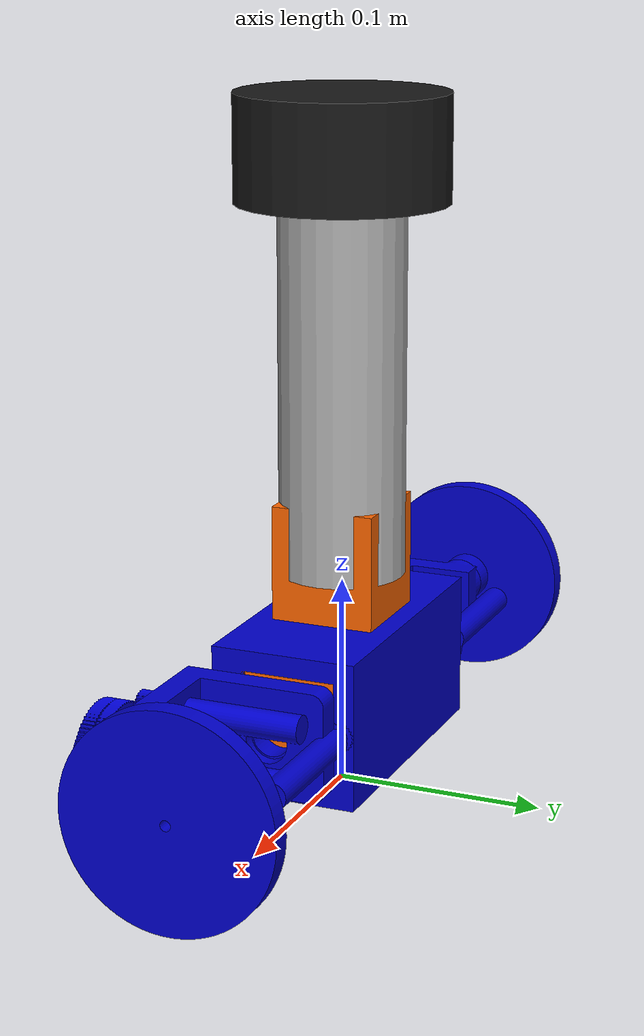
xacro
<?xml version="1.0"?>
<robot name="mrs" xmlns:xacro="http://www.ros.org/wiki/xacro">

    <!-- Constants for robot -->
    <xacro:include filename="$(find mrs_description)/urdf/common_mrs.xacro" />
    <!-- Import all Gazebo-customization elements, including Gazebo colors -->
    <xacro:include filename="$(find mrs_description)/urdf/power_base/ball_bearing.urdf.xacro" />
    <xacro:include filename="$(find mrs_description)/urdf/power_base/sm_other.urdf.xacro" />
    <xacro:include filename="$(find mrs_description)/urdf/JM/jm.xacro" />
    <xacro:include filename="$(find mrs_description)/urdf/PCM/pcm.xacro" />

    <!-- Used for fixing robot to Gazebo 'base_link' -->
    <link name="world" >
        <inertial>
        <mass value="0.1"/>
        <origin xyz="0 0 0" rpy="0 0 0"/>
        <inertia ixx="1.0" ixy="0.0" ixz="0.0" iyy="1.0" iyz="0.0" izz="1.0"/>
      </inertial>
      <visual>
        <origin xyz="0 0 0" rpy="0 0 0"/>
        <geometry>
          <box size="0.001 0.001 0.001"/>
        </geometry>
        <material name="Red"/>
      </visual>
      <collision>
        <origin xyz="0 0 0" rpy="0 0 0"/>
        <geometry>
          <box size="0.001 0.001 0.001"/>
        </geometry>
      </collision>
    </link>
    <joint name="fixed" type="fixed">
        <axis xyz="1 0 0 " />
        <origin xyz="0 0 0.05" rpy="0 ${-pi/2} 0" />
        <parent link="world" />
        <child link="base_footprint" />
    </joint>

    <!-- Fictitious Base Link is a fictitious link(frame) that is on the ground below
        base_link origin, Dummy link-->

    <link name="base_footprint">
            <mass value="1.0" />
            <visual>
                <geometry>
                    <box size="0.07 0.07 0.14" />
                </geometry>
                <material name="Blue">
                </material>
            </visual>
            <collision>
                <geometry>
                    <box size="0.05 0.05 0.04" />
                </geometry>
            </collision>
            <xacro:default_inertial mass="0.15" I_tensor="8.166e-4"/>
    </link>
        <gazebo reference="base_footprint">
        <material>Gazebo/Blue</material>
        <selfCollide>false</selfCollide>
    </gazebo>

  <xacro:PcModule_Prismatic parent="world" prefix="W3" reflect="3" />
  <xacro:JM3_solid name="JM" prefix="W1" instance="1"  parent="W1_PCmodule" reflect="1" shift="0.035"/>
  <xacro:PcModule_solid parent="base_footprint" prefix="W1" reflect="-1" />
  <xacro:PcModule_solid parent="base_footprint" prefix="W2" reflect="1" />
  <xacro:JM3_solid name="JM1" prefix="W1" instance="2"  parent="W2_PCmodule" reflect="-1" shift="0.035"/>

  <xacro:SMRadprobe parent="W3_PCmodule" prefix="W4" reflect="0" instance="1" />
    <!-- ros_control plugin -->
    <gazebo>
        <plugin name="mrs_ros_control" filename="libgazebo_ros_control.so">
            <controlPeriod>0.001</controlPeriod>
            <robotNamespace>/mrs</robotNamespace>
        </plugin>

      <plugin name="object_controller" filename="libgazebo_ros_planar_move.so">
      <commandTopic>cmd_vel</commandTopic>
      <odometryTopic>odom</odometryTopic>
      <odometryFrame>odom</odometryFrame>
      <odometryRate>20.0</odometryRate>
      <robotBaseFrame>world</robotBaseFrame>
    </plugin>
  </gazebo>

</robot>

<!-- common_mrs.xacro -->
<robot name="mrs" xmlns:xacro="http://www.ros.org/wiki/xacro">

	<!-- Auxiliar Values -->
	<property name="pi" value="3.1415926535897931" />
	<property name="max_effort" value="20" />
	<property name="max_velocity" value="10" />

	<!-- Links Mass -->
	<property name="j1_mass" value="0.137" />
	<property name="j2_mass" value="0.01" />
	<property name="j3_mass" value="0.027" />
	<property name="w1_mass" value="0.089" />
	<property name="pc_mass" value="0.249" />

	<!-- Links COG -->
	<property name="j1_cog" value="-0.024 -0.021 0" />
	<property name="j2_cog" value="1.068e-4 0 4.22e-4" />
	<property name="j3_cog" value="-5.121e-4 0.014 -0.012" />
	<property name="w1_cog" value="-0.003 0 0" />
	<property name="pc_cog" value="-0.034 0 0" />

	<!-- Links Inertia -->
	<macro name="j1_inertia">
		<inertia ixx="1.043e-4" ixy="4.237e-5" ixz="8.843e-7"
		iyy="1.259e-5" iyz="-2.329e-8" izz="1.759e-4" />
	</macro>
	<macro name="j2_inertia">
		<inertia 	ixx="1.34e-6" 	ixy="2.119e-11"		ixz="7.365e-11"
							iyy="1.326e-6"	iyz="2.329e-12"
							izz="2.006e-6" />
	</macro>
	<macro name="j3_inertia">
		<inertia 	ixx="9.335e-6" ixy="1.198e-8" ixz="5.264e-9"
							iyy="5.505e-6" iyz="-2.699e-6"
							izz="6.39e-6" />
	</macro>
	<macro name="pc_inertia">
		<inertia 	ixx="4.35e-4" ixy="-5.575e-21" ixz="4.256e-21"
							iyy="4.82e-4" iyz="3.176e-21"
							izz="1.809e-4" />
	</macro>
	<macro name="w1_inertia">
		<inertia 	ixx="1.036e-4" ixy="0" ixz="0"
							iyy="5.359e-5" iyz="0"
							izz="5.359e-5" />
	</macro>
		<!-- Links orientation and origin -->
	<macro name="j1_ori">
      <origin xyz="0 0 0" rpy="${-pi/2} 0 0"/>
	</macro>
	<macro name="j2_ori">
		<origin xyz="0.044 0 0" rpy="0 0 0" />
	</macro>
	<macro name="j3_ori">
      <origin xyz="-0.5 0 0" rpy="0 0 ${-pi/2} "/>
	</macro>
	<macro name="pc_ori">
      <origin xyz="0.5 0 0" rpy="0 0 0"/>
	</macro>
	<macro name="w1_ori">
      <origin xyz="0 0 0" rpy="0 0 0 "/>
	</macro>

	<!-- MESH FILES -->
	<property name="j1_mesh" value="package://mrs_description/meshes/J1.dae" />
		<!--property name="j1_mesh" value="package://mrs_description/meshes/BASE.dae" /-->
	<property name="j2_mesh" value="package://mrs_description/meshes/J2.dae" />
	<property name="j3_mesh" value="package://mrs_description/meshes/J3.dae" />
	<property name="pc_mesh" value="package://mrs_description/meshes/Pc.dae" />
	<property name="w1_mesh" value="package://mrs_description/meshes/WR1.dae" />

	<!-- Link's Macro -->
	<macro name="create_link" params="name color mesh mass cog *inertia instance prefix">
		<link name="${instance}_${prefix}_${name}">
			<visual>
				<!--xacro:insert_block name="ori" /-->
				<geometry>
					<mesh filename="${mesh}" />
				</geometry>
				<material name="${color}" />
			</visual>
			<collision>
				<!--xacro:insert_block name="ori" /-->
				<geometry>
					<mesh filename="${mesh}" />
				</geometry>
			</collision>
			<inertial>
				<origin xyz="${cog}" rpy="0 0 0" />
				<mass value="${mass}" />
				<xacro:insert_block name="inertia" />
			</inertial>
		</link>
	</macro>

	<macro name="create_link_no_collision" params="name color mesh mass cog *inertia instance prefix">
		<link name="${instance}_${prefix}_${name}">
			<visual>
				<!--xacro:insert_block name="ori" /-->
				<geometry>
					<mesh filename="${mesh}" />
				</geometry>
				<material name="${color}" />
			</visual>
			<inertial>
				<origin xyz="${cog}" rpy="0 0 0" />
				<mass value="${mass}" />
				<xacro:insert_block name="inertia" />
			</inertial>
		</link>
	</macro>
	<!-- Transmission's Macro -->
	<macro name="simple_transmission" params="joint">
		<transmission name="${joint}tran">
			<type>transmission_interface/SimpleTransmission</type>
			<joint name="${joint}" />
			<actuator name="${joint}_motor">
				<hardwareInterface>EffortJointInterface</hardwareInterface>
				<mechanicalReduction>1</mechanicalReduction>
			</actuator>
		</transmission>
	</macro>

	<!-- Joints Dynamics -->
	<property name="j1_damping" value="0" />
	<property name="j2_damping" value="0" />
	<property name="j3_damping" value="0" />
	<property name="w1_damping" value="0" />

</robot>

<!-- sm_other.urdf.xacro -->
<robot xmlns:xacro="http://www.ros.org/wiki/xacro">

        <!-- Constants for robot -->
    <xacro:include filename="$(find mrs_description)/urdf/common_mrs.xacro" />
  <!-- simplified box collision geometry for base -->

  <property name="mass" value="22.0"/>

   <!-- Size of square 'camera' box -->
  <xacro:property name="camera_size" value="0.015" />

    <xacro:macro name="Camera" params="parent prefix x y z instance">
    <joint name="${instance}_${prefix}_camera_joint" type="fixed">
      <axis xyz="1 0 0" />
      <parent link="${parent}" />
      <child link="${instance}_${prefix}_camera_link" />
      <origin rpy="0 0 0" xyz="${x} ${y} ${z}" />
    </joint>
    <link name="${instance}_${prefix}_camera_link">
      <visual>
        <geometry>
            <box size="${camera_size} ${camera_size} ${camera_size}"/>
        </geometry>
        <origin rpy="0 0 0 " xyz="0 0 0" />
        <material name="Red"/>
      </visual>
      <collision>
        <origin rpy="0 0 0 " xyz="0 0 0" />
        <geometry>
            <box size="${camera_size} ${camera_size} ${camera_size}"/>
        </geometry>
      </collision>
      <inertial>
        <mass value="1e-5" />
        <origin xyz="0 0 0" rpy="0 0 0"/>
        <inertia ixx="1e-6" ixy="0" ixz="0" iyy="1e-6" iyz="0" izz="1e-6" />
      </inertial>
    </link>
    <gazebo reference="${instance}_${prefix}_camera_link">
      <mu1>0.2</mu1>
      <mu2>0.2</mu2>
      <material>Gazebo/Red</material>

      <sensor type="camera" name="${instance}_${prefix}_camera">
        <always_on>true</always_on>
        <update_rate>30.0</update_rate>
        <camera name="${instance}_${prefix}_camera">
          <horizontal_fov>1.3962634</horizontal_fov>
          <image>
            <width>800</width>
            <height>800</height>
            <format>R8G8B8</format>
          </image>
          <clip>
            <near>0.02</near>
            <far>300</far>
          </clip>
        </camera>
        <plugin name="camera_controller" filename="libgazebo_ros_camera.so">
          <cameraName>mrs/${instance}_${prefix}_camera</cameraName>
          <imageTopicName>image_raw</imageTopicName>
          <cameraInfoTopicName>camera_info</cameraInfoTopicName>
          <frameName>camera_link</frameName>
          <hackBaseline>0.07</hackBaseline>
          <distortionK1>0.0</distortionK1>
          <distortionK2>0.0</distortionK2>
          <distortionK3>0.0</distortionK3>
          <distortionT1>0.0</distortionT1>
          <distortionT2>0.0</distortionT2>
        </plugin>
      </sensor>
    </gazebo>

    </xacro:macro>

  <xacro:macro name="IMU" params="parent prefix x y z">
    <joint name="${prefix}_imu_joint" type="fixed">
      <axis xyz="1 0 0" />
      <parent link="${parent}" />
      <child link="${prefix}_imu_link" />
      <origin rpy="0 0 0" xyz="${x} ${y} ${z}" />
    </joint>
    <link name="${prefix}_imu_link">
      <visual>
        <geometry>
            <box size="0.001 0.001 0.001"/>
        </geometry>
        <origin rpy="0 0 0 " xyz="0 0 0" />
        <material name="Red"/>
      </visual>
      <collision>
        <origin rpy="0 0 0 " xyz="0 0 0" />
        <geometry>
            <box size="0.001 0.001 0.001"/>
        </geometry>
      </collision>
      <inertial>
        <mass value="1e-5" />
        <origin xyz="0 0 0" rpy="0 0 0"/>
        <inertia ixx="1e-6" ixy="0" ixz="0" iyy="1e-6" iyz="0" izz="1e-6" />
      </inertial>
    </link>
    <gazebo>
      <plugin filename="libgazebo_ros_imu.so" name="imu_en_ros">
        <bodyName>${prefix}_imu_link</bodyName>
        <robotNamespace>mrs</robotNamespace>
        <topicName>${prefix}_IMU</topicName>
      </plugin>
    </gazebo>

  </xacro:macro>

    <xacro:macro name="Laser" params="parent prefix x y z instance">
    <joint name="${instance}_${prefix}_laser_joint" type="fixed">
      <axis xyz="1 0 0" />
      <parent link="${parent}" />
      <child link="${instance}_${prefix}_laser_link" />
      <origin rpy="0 0 0" xyz="${x} ${y} ${z}" />
    </joint>
    <link name="${instance}_${prefix}_laser_link">
      <visual>
        <geometry>
            <box size="${camera_size} ${camera_size} ${camera_size}"/>
        </geometry>
        <origin rpy="0 0 0 " xyz="0 0 0" />
        <material name="Red"/>
      </visual>
      <collision>
        <origin rpy="0 0 0 " xyz="0 0 0" />
        <geometry>
            <mesh filename="package://mrs_description/meshes/hokuyo.dae"/>
        </geometry>
      </collision>
      <inertial>
        <mass value="1e-5" />
        <origin xyz="0 0 0" rpy="0 0 0"/>
        <inertia ixx="1e-6" ixy="0" ixz="0" iyy="1e-6" iyz="0" izz="1e-6" />
      </inertial>
    </link>
    <gazebo reference="${instance}_${prefix}_laser_link">
      <sensor type="gpu_ray" name="${instance}_${prefix}_lasersensor">
        <pose>0 0 0 0 0 0</pose>
        <visualize>false</visualize>
        <update_rate>40</update_rate>
        <ray>
          <scan>
            <horizontal>
              <samples>720</samples>
              <resolution>1</resolution>
              <min_angle>-1.570796</min_angle>
              <max_angle>1.570796</max_angle>
            </horizontal>
          </scan>
          <range>
            <min>0.10</min>
            <max>30.0</max>
            <resolution>0.01</resolution>
          </range>
        </ray>
        <plugin name="gazebo_ros_head_hokuyo_controller" filename="libgazebo_ros_gpu_laser.so">
          <topicName>/mrs/${instance}_${prefix}_lasersensor</topicName>
          <frameName>${instance}_${prefix}_laser_link</frameName>
        </plugin>
      </sensor>
    </gazebo>
    </xacro:macro>

    <xacro:macro name="SMRadprobe" params="parent prefix reflect instance">
        <joint name="${instance}_${prefix}_SMRadprobe_joint" type="fixed">
            <parent link="${parent}" />
            <child link="${instance}_${prefix}_rad_pole" />
            <origin rpy="0 ${-pi/2} 0" xyz="-0.1 0 0" />
        </joint>
        <link name="${instance}_${prefix}_rad_pole">
            <visual>
                <geometry>
                    <cylinder length="0.2" radius=".03" />
                </geometry>
                <origin rpy="0 0 0 " xyz="0 0 0" />
                <material name="Gray">
                    <color rgba=".7 .7 .7 1" />
                </material>
            </visual>
        </link>
        <joint name="${instance}_${prefix}_rad_joint" type="fixed">
            <axis xyz="0 0 1" />
            <origin rpy="0 0 0" xyz="0 0 0.1" />
            <parent link="${instance}_${prefix}_rad_pole" />
            <child link="${instance}_${prefix}_rad" />
        </joint>
        <link name="${instance}_${prefix}_rad">
            <visual>
                <origin rpy="0.0 0 0" xyz="0 0 0" />
                <geometry>
                    <cylinder length="0.05" radius=".05" />
                </geometry>
                                <material name="Black"/>
            </visual>
        </link>
    <gazebo reference="${instance}_${prefix}_rad_pole">
      <material>Gazebo/Red</material>
      <selfCollide>false</selfCollide>
    </gazebo>
    <gazebo reference="${instance}_${prefix}_rad">
      <material>Gazebo/Black</material>
      <selfCollide>false</selfCollide>
    </gazebo>
    </xacro:macro>

    <xacro:macro name="SMHand" params="parent prefix reflect instance">
        <joint name="${instance}_${prefix}_SMHand_joint" type="fixed">
            <parent link="${parent}" />
            <child link="${instance}_${prefix}_gripper_pole" />
            <origin rpy="0 0 0" xyz="0 0 0.05" />
        </joint>
        <link name="${instance}_${prefix}_gripper_pole">
            <visual>
                <origin rpy="0 0 0" xyz="0 0 0" />
                <geometry>
                    <cylinder length="0.1" radius=".02" />
                </geometry>
                <material name="Gray">
                    <color rgba=".7 .7 .7 1" />
                </material>
            </visual>
        </link>
        <joint name="${instance}_${prefix}_left_gripper_joint" type="revolute">
            <axis xyz="0 0 1" />
            <limit effort="1000.0" lower="0.0" upper="0.548" velocity="0.5" />
            <origin rpy="0 0 0" xyz="0 0.005 0.07" />
            <parent link="${instance}_${prefix}_gripper_pole" />
            <child link="${instance}_${prefix}_left_gripper" />
        </joint>
        <link name="${instance}_${prefix}_left_gripper">
            <visual>
                <origin rpy="0.0 0 0" xyz="0 0 0" />
                <geometry>
                    <mesh filename="package://pr2_description/meshes/gripper_v0/l_finger.dae" scale="0.5 0.5 0.5" />
                </geometry>
            </visual>
        </link>
        <joint name="${instance}_${prefix}_left_tip_joint" type="fixed">
            <parent link="${instance}_${prefix}_left_gripper" />
            <child link="${instance}_${prefix}_left_tip" />
        </joint>
        <link name="${instance}_${prefix}_left_tip">
            <visual>
                <origin rpy="0.0 0 0" xyz="0.045 0.00249 0" />
                <geometry>
                    <mesh
                        filename="package://pr2_description/meshes/gripper_v0/l_finger_tip.dae" scale="0.5 0.5 0.5"/>
                </geometry>
            </visual>
        </link>
        <joint name="${instance}_${prefix}_right_gripper_joint" type="revolute">
            <axis xyz="0 0 -1" />
            <limit effort="1000.0" lower="0.0" upper="0.548" velocity="0.5" />
            <origin rpy="0 0 0" xyz="0 -0.005 0.07" />
            <parent link="${instance}_${prefix}_gripper_pole" />
            <child link="${instance}_${prefix}_right_gripper" />
        </joint>
        <link name="${instance}_${prefix}_right_gripper">
            <visual>
                <origin rpy="-3.1415 0 0" xyz="0 0 0" />
                <geometry>
                    <mesh filename="package://pr2_description/meshes/gripper_v0/l_finger.dae" scale="0.5 0.5 0.5" />
                </geometry>
            </visual>
        </link>
        <joint name="${instance}_${prefix}_right_tip_joint" type="fixed">
            <parent link="${instance}_${prefix}_right_gripper" />
            <child link="${instance}_${prefix}_right_tip" />
        </joint>
        <link name="${instance}_${prefix}_right_tip">
            <visual>
                <origin rpy="-3.1415 0 0" xyz="0.045 0.00249 0" />
                <geometry>
                    <mesh
                        filename="package://pr2_description/meshes/gripper_v0/l_finger_tip.dae" scale="0.5 0.5 0.5" />
                </geometry>
            </visual>
        </link>
    <gazebo reference="${instance}_${prefix}_gripper_pole">
      <material>Gazebo/Grey</material>
      <selfCollide>false</selfCollide>
    </gazebo>
    <gazebo reference="${instance}_${prefix}_left_gripper">
      <material>Gazebo/Grey</material>
      <selfCollide>false</selfCollide>
    </gazebo>
    <gazebo reference="${instance}_${prefix}_left_tip">
      <material>Gazebo/Grey</material>
      <selfCollide>false</selfCollide>
    </gazebo>
    <gazebo reference="${instance}_${prefix}_right_gripper">
      <material>Gazebo/Grey</material>
      <selfCollide>false</selfCollide>
    </gazebo>
    </xacro:macro>

</robot>

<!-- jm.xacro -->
<robot name="mrs" xmlns:xacro="http://www.ros.org/wiki/xacro">

  <!-- Constants for robot -->
  <xacro:include filename="$(find mrs_description)/urdf/common_mrs.xacro" />
  <!-- Import all Gazebo-customization elements, including Gazebo colors -->
  <xacro:include filename="$(find mrs_description)/urdf/JM/jm.gazebo.xacro" />
  <!-- Import Rviz colors -->

  <xacro:include filename="$(find mrs_description)/urdf/materials.urdf.xacro" />

<macro name="JM1_armconnect" params="name prefix instance parent">
  <!-- Links -->
  <create_link name="j1_link" color="Blue" mesh="${j1_mesh}"
    cog="${j1_cog}" mass="${j1_mass}" instance="${instance}" prefix="${prefix}">
    <j1_inertia />
  </create_link>

  <create_link_no_collision name="j2_link" color="Blue" mesh="${j2_mesh}"
    cog="${j2_cog}" mass="${j2_mass}" instance="${instance}" prefix="${prefix}">
    <j2_inertia />
  </create_link_no_collision>
  <create_link_no_collision name="j3_link" color="Blue" mesh="${j3_mesh}"
    cog="${j3_cog}" mass="${j3_mass}" instance="${instance}" prefix="${prefix}">
    <j3_inertia />
  </create_link_no_collision>
  <create_link name="w1_link" color="Blue" mesh="${w1_mesh}"
    cog="${w1_cog}" mass="${w1_mass}" instance="${instance}" prefix="${prefix}">
    <w1_inertia />
  </create_link>

  <!-- Joints -->

  <joint name="${instance}_${prefix}_j3" type="continuous">
    <child link="${instance}_${prefix}_w1_link" />
    <parent link="${parent}" />
    <axis xyz="0 0 1 " />
    <origin xyz="0 0 0.01" rpy="${-pi/2} 0 0" />
    <limit lower="${-pi/2}" upper="${pi/2}" effort="${max_effort}"
      velocity="${max_velocity}" />
    <dynamics damping="${j3_damping}" />
 </joint>
  <joint name="${instance}_${prefix}_j2_fixed" type="fixed">
    <child link="${instance}_${prefix}_j3_link" />
    <parent link="${instance}_${prefix}_w1_link" />
    <origin xyz="0.045 0 0" rpy="0 0 ${pi/2}" />
  </joint>

  <joint name="${instance}_${prefix}_j2" type="revolute">
    <child link="${instance}_${prefix}_j1_link" />
    <parent link="${instance}_${prefix}_j3_link" />
    <axis xyz="1 0 0 " />
    <origin xyz="0 0 0" rpy="0 ${-pi/2} 0" />
    <limit lower="${-pi/2}" upper="${pi/2}" effort="${max_effort}"
      velocity="${max_velocity}" />
    <dynamics damping="${j2_damping}" />
  </joint>

  <joint name="${instance}_${prefix}_j1" type="continuous">
    <child link="${instance}_${prefix}_j2_link" />
    <parent link="${instance}_${prefix}_j1_link" />
    <axis xyz="0 0 1 " />
    <origin xyz="0 -0.058 0" rpy="${pi/2} 0 0" />
    <limit lower="${-pi/2}" upper="${pi/2}" effort="${max_effort}"
      velocity="${max_velocity}" />
    <dynamics damping="${j3_damping}" />
  </joint>

    <!-- Transmissions -->
  <simple_transmission joint="${instance}_${prefix}_j1" />
  <simple_transmission joint="${instance}_${prefix}_j2" />
  <simple_transmission joint="${instance}_${prefix}_j3" />

    <!-- Gazebo  -->
  <xacro:JMG name="${name}_gazebo" prefix="${prefix}" instance="${instance}" />

  </macro>

<macro name="JM1" params="name prefix instance parent">
  <!-- Links -->
  <create_link name="j1_link" color="Blue" mesh="${j1_mesh}"
    cog="${j1_cog}" mass="${j1_mass}" instance="${instance}" prefix="${prefix}">
    <j1_inertia />
  </create_link>

  <create_link_no_collision name="j2_link" color="Blue" mesh="${j2_mesh}"
    cog="${j2_cog}" mass="${j2_mass}" instance="${instance}" prefix="${prefix}">
    <j2_inertia />
  </create_link_no_collision>
  <create_link_no_collision name="j3_link" color="Blue" mesh="${j3_mesh}"
    cog="${j3_cog}" mass="${j3_mass}" instance="${instance}" prefix="${prefix}">
    <j3_inertia />
  </create_link_no_collision>
  <create_link name="w1_link" color="Blue" mesh="${w1_mesh}"
    cog="${w1_cog}" mass="${w1_mass}" instance="${instance}" prefix="${prefix}">
    <w1_inertia />
  </create_link>

  <!-- Joints -->

    <joint name="${instance}_${prefix}_j3" type="fixed">
    <child link="${instance}_${prefix}_w1_link" />
    <parent link="${parent}" />
    <axis xyz="0 0 1 " />
    <origin xyz="0 0 0.01" rpy="0 ${-pi/2} 0" />
  </joint>

  <joint name="${instance}_${prefix}_j2_fixed" type="fixed">
    <child link="${instance}_${prefix}_j3_link" />
    <parent link="${instance}_${prefix}_w1_link" />
    <origin xyz="0.045 0 0" rpy="0 0 ${pi/2}" />
  </joint>

  <joint name="${instance}_${prefix}_j2" type="revolute">
    <child link="${instance}_${prefix}_j1_link" />
    <parent link="${instance}_${prefix}_j3_link" />
    <axis xyz="1 0 0 " />
    <origin xyz="0 0 0" rpy="0 ${-pi/2} 0" />
    <limit lower="${-pi/2}" upper="${pi/2}" effort="${max_effort}"
      velocity="${max_velocity}" />
    <dynamics damping="${j2_damping}" />
  </joint>

  <joint name="${instance}_${prefix}_j1" type="revolute">
    <child link="${instance}_${prefix}_j2_link" />
    <parent link="${instance}_${prefix}_j1_link" />
    <axis xyz="0 0 1 " />
    <origin xyz="0 -0.058 0" rpy="${pi/2} 0 0" />
    <limit lower="${-pi/2}" upper="${pi/2}" effort="${max_effort}"
      velocity="${max_velocity}" />
    <dynamics damping="${j3_damping}" />
  </joint>

    <!-- Transmissions -->
  <simple_transmission joint="${instance}_${prefix}_j1" />
  <simple_transmission joint="${instance}_${prefix}_j2" />

    <!-- Gazebo  -->
  <xacro:JMG name="${name}_gazebo" prefix="${prefix}" instance="${instance}" />

  </macro>

<macro name="JM1_kinematic" params="name prefix instance parent">
  <!-- Links -->
  <create_link name="j1_link" color="Grey" mesh="${j1_mesh}"
    cog="${j1_cog}" mass="${j1_mass}" instance="${instance}" prefix="${prefix}">
    <j1_inertia />
  </create_link>

  <link name="1_L1_j2_link">
      <visual>
        <geometry>
          <cylinder length="0.15" radius=".03" />
        </geometry>
        <origin rpy="0 0 0 " xyz="0 0 0" />
        <material name="Gray">
          <color rgba=".7 .7 .7 1" />
        </material>
      </visual>
      <collision>
        <geometry>
          <cylinder length="0.06" radius=".01" />
        </geometry>
      </collision>
    </link>
  <create_link name="w1_link" color="Black" mesh="${w1_mesh}"
    cog="${w1_cog}" mass="${w1_mass}" instance="${instance}" prefix="${prefix}">
    <w1_inertia />
  </create_link>

  <!-- Joints -->

  <joint name="${instance}_${prefix}_j3" type="revolute">
    <child link="${instance}_${prefix}_w1_link" />
    <parent link="${parent}" />
    <axis xyz="1 0 0 " />
    <origin xyz="0 0 0.01" rpy="0 ${-pi/2} 0" />
    <limit lower="${-pi}" upper="${pi}" effort="${max_effort}"
      velocity="${max_velocity}" />
    <dynamics damping="${j3_damping}" />

  </joint>

  <joint name="${instance}_${prefix}_j2" type="revolute">
    <child link="${instance}_${prefix}_j1_link" />
    <parent link="${instance}_${prefix}_w1_link" />
    <axis xyz="1 0 0 " />
    <origin xyz="0.045 0 0" rpy="0 ${pi/2} ${pi/2}" />
    <limit lower="${-pi/2}" upper="${pi/2}" effort="${max_effort}"
      velocity="${max_velocity}" />
    <dynamics damping="${j2_damping}" />
  </joint>

  <joint name="${instance}_${prefix}_j1" type="revolute">
    <child link="${instance}_${prefix}_j2_link" />
    <parent link="${instance}_${prefix}_j1_link" />
    <axis xyz="0 1 0 " />
    <origin xyz="0 -0.125 0" rpy="${pi/2} 0 0" />
    <limit lower="${-pi/2}" upper="${pi/2}" effort="${max_effort}"
      velocity="${max_velocity}" />
    <dynamics damping="${j3_damping}" />
  </joint>

    <!-- Transmissions -->
  <simple_transmission joint="${instance}_${prefix}_j1" />
  <simple_transmission joint="${instance}_${prefix}_j2" />
  <simple_transmission joint="${instance}_${prefix}_j3" />

    <!-- Gazebo  -->
  <xacro:JMG name="${name}_gazebo" prefix="${prefix}" instance="${instance}" />
  </macro>
<macro name="JM2" params="name prefix instance parent reflect shift shift2">
  <create_link name="j1_link" color="Blue" mesh="${j1_mesh}"
    cog="${j1_cog}" mass="${j1_mass}" instance="${instance}" prefix="${prefix}">
    <j1_inertia />
  </create_link>

  <create_link_no_collision name="j2_link" color="Blue" mesh="${j2_mesh}"
    cog="${j2_cog}" mass="${j2_mass}" instance="${instance}" prefix="${prefix}">
    <j2_inertia />
  </create_link_no_collision>
  <create_link_no_collision name="j3_link" color="Blue" mesh="${j3_mesh}"
    cog="${j3_cog}" mass="${j3_mass}" instance="${instance}" prefix="${prefix}">
    <j3_inertia />
  </create_link_no_collision>
  <create_link name="w1_link" color="Blue" mesh="${w1_mesh}"
    cog="${w1_cog}" mass="${w1_mass}" instance="${instance}" prefix="${prefix}">
    <w1_inertia />
  </create_link>

  <joint name="${instance}_${prefix}_j3" type="revolute">
    <child link="${instance}_${prefix}_w1_link" />
    <parent link="${instance}_${prefix}_j3_link" />
    <axis xyz="1 0 0" />
    <origin xyz="0 0.05 0" rpy="0 0 ${-pi/2}" />
    <limit lower="${-pi}" upper="${pi}" effort="${max_effort}"
      velocity="${max_velocity}" />
    <dynamics damping="${j1_damping}" />
  </joint>

  <joint name="${instance}_${prefix}_j2" type="revolute">
    <child link="${instance}_${prefix}_j3_link" />
    <parent link="${instance}_${prefix}_j1_link" />
    <axis xyz="0 0 1 " />
    <origin xyz="0 0 0" rpy="0 ${pi/2} 0" />
    <limit lower="${-pi/2}" upper="${pi/2}" effort="${max_effort}"
      velocity="${max_velocity}" />
    <dynamics damping="${j2_damping}" />
  </joint>

  <joint name="${instance}_${prefix}_j2_fixed" type="fixed">
    <child link="${instance}_${prefix}_j1_link" />
    <parent link="${instance}_${prefix}_j2_link" />
    <axis xyz="1 0 0 " />
    <origin xyz="0 0 0.058" rpy="${pi/2} 0 ${pi/2}" />
  </joint>

  <joint name="${instance}_${prefix}_j1" type="revolute">
    <child link="${instance}_${prefix}_j2_link" />
    <parent link="${parent}" />
    <axis xyz="0 0 1 " />
    <origin xyz="${shift*reflect} 0 ${shift*shift2}" rpy="0 ${reflect*pi/2} 0" />
    <limit lower="0" upper="${pi}" effort="${max_effort}"
      velocity="${max_velocity}" />
    <dynamics damping="${j3_damping}" />
  </joint>
    <!-- Transmissions -->
  <simple_transmission joint="${instance}_${prefix}_j1" />
  <simple_transmission joint="${instance}_${prefix}_j2" />
  <simple_transmission joint="${instance}_${prefix}_j3" />

  <!-- Gazebo  -->
  <xacro:JMG name="${name}_gazebo" prefix="${prefix}" instance="${instance}" />
  </macro>

<macro name="JM2_3DOF_kinematic" params="name prefix instance parent reflect shift shift2">
  <create_link name="j1_link" color="Grey" mesh="${j1_mesh}"
    cog="${j1_cog}" mass="${j1_mass}" instance="${instance}" prefix="${prefix}">
    <j1_inertia />
  </create_link>

  <create_link name="j3_link" color="Grey" mesh="${j3_mesh}"
    cog="${j3_cog}" mass="${j3_mass}" instance="${instance}" prefix="${prefix}">
    <j3_inertia />
  </create_link>

  <create_link name="w1_link" color="Black" mesh="${w1_mesh}"
    cog="${w1_cog}" mass="${w1_mass}" instance="${instance}" prefix="${prefix}">
    <w1_inertia />
  </create_link>

  <joint name="${instance}_${prefix}_j3" type="revolute">
    <child link="${instance}_${prefix}_w1_link" />
    <parent link="${instance}_${prefix}_j3_link" />
    <axis xyz="1 0 0" />
    <origin xyz="0 0.055 0" rpy="0 0 ${-pi/2}" />
    <limit lower="${-pi}" upper="${pi}" effort="${max_effort}"
      velocity="${max_velocity}" />
    <dynamics damping="${j1_damping}" />
  </joint>

  <joint name="${instance}_${prefix}_j2" type="revolute">
    <child link="${instance}_${prefix}_j3_link" />
    <parent link="${instance}_${prefix}_j1_link" />
    <axis xyz="0 0 1" />
    <origin xyz="0 0.02 0" rpy="0 ${pi/2} 0" />
    <limit lower="${-pi/3}" upper="${pi/3}" effort="${max_effort}"
      velocity="${max_velocity}" />
    <dynamics damping="${j2_damping}" />
  </joint>

  <joint name="${instance}_${prefix}_j1" type="continuous">
    <child link="${instance}_${prefix}_j1_link" />
    <parent link="${parent}" />
    <axis xyz="0 1 0" />
    <origin xyz="0 0 ${shift}" rpy=" ${pi/2} 0 0" />
  </joint>
    <!-- Transmissions -->
  <simple_transmission joint="${instance}_${prefix}_j1" />
  <simple_transmission joint="${instance}_${prefix}_j2" />
  <simple_transmission joint="${instance}_${prefix}_j3" />

  <!-- Gazebo  -->
  <xacro:JMG name="${name}_gazebo" prefix="${prefix}" instance="${instance}" />
  </macro>
<macro name="JM2_kinematic" params="name prefix instance parent reflect shift shift2">

  <create_link name="j1_link" color="Blue" mesh="${j1_mesh}"
    cog="${j1_cog}" mass="${j1_mass}" instance="${instance}" prefix="${prefix}">
    <j1_inertia />
  </create_link>

  <create_link name="j3_link" color="Blue" mesh="${j3_mesh}"
    cog="${j3_cog}" mass="${j3_mass}" instance="${instance}" prefix="${prefix}">
    <j3_inertia />
  </create_link>

  <joint name="${instance}_${prefix}_j3" type="revolute">
    <child link="${instance}_${prefix}_j3_link" />
    <parent link="${instance}_${prefix}_j1_link" />
    <axis xyz="0 0 1" />
    <origin xyz="0 0.01 0" rpy="0 ${pi/2} 0" />
    <limit lower="${-pi/2}" upper="${pi/2}" effort="${max_effort}"
      velocity="${max_velocity}" />
    <dynamics damping="${j1_damping}" />
  </joint>

  <joint name="${instance}_${prefix}_j1" type="revolute">
    <child link="${instance}_${prefix}_j1_link" />
    <parent link="${parent}" />
    <axis xyz="0 1 0 " />
    <origin xyz="${shift} 0 ${shift*shift2}" rpy=" 0 0 ${-pi/2}" />
    <limit lower="0" upper="${pi}" effort="${max_effort}"
      velocity="${max_velocity}" />
    <dynamics damping="${j3_damping}" />
  </joint>
    <!-- Transmissions -->
  <simple_transmission joint="${instance}_${prefix}_j1" />
  <simple_transmission joint="${instance}_${prefix}_j2" />
  <simple_transmission joint="${instance}_${prefix}_j3" />

  <!-- Gazebo  -->
  <xacro:JMG name="${name}_gazebo" prefix="${prefix}" instance="${instance}" />
  </macro>

<macro name="JM3" params="name prefix instance parent reflect shift">
  <create_link name="j1_link" color="Blue" mesh="${j1_mesh}"
    cog="${j1_cog}" mass="${j1_mass}" instance="${instance}" prefix="${prefix}">
    <j1_inertia />
  </create_link>

  <create_link_no_collision name="j2_link" color="Blue" mesh="${j2_mesh}"
    cog="${j2_cog}" mass="${j2_mass}" instance="${instance}" prefix="${prefix}">
    <j2_inertia />
  </create_link_no_collision>
  <create_link_no_collision name="j3_link" color="Blue" mesh="${j3_mesh}"
    cog="${j3_cog}" mass="${j3_mass}" instance="${instance}" prefix="${prefix}">
    <j3_inertia />
  </create_link_no_collision>
  <create_link name="w1_link" color="Blue" mesh="${w1_mesh}"
    cog="${w1_cog}" mass="${w1_mass}" instance="${instance}" prefix="${prefix}">
    <w1_inertia />
  </create_link>

  <joint name="${instance}_${prefix}_j3" type="continuous">
    <child link="${instance}_${prefix}_w1_link" />
    <parent link="${instance}_${prefix}_j3_link" />
    <axis xyz="1 0 0" />
    <origin xyz="0 0.05 0" rpy="0 0 ${-pi/2}" />
  </joint>

  <joint name="${instance}_${prefix}_j2" type="revolute">
    <child link="${instance}_${prefix}_j3_link" />
    <parent link="${instance}_${prefix}_j1_link" />
    <axis xyz="0 0 1 " />
    <origin xyz="0 0 0" rpy="0 ${pi/2} 0" />
    <limit lower="${-pi/2}" upper="${pi/2}" effort="${max_effort}"
      velocity="${max_velocity}" />
    <dynamics damping="${j2_damping}" />
  </joint>

  <joint name="${instance}_${prefix}_j2_fixed" type="fixed">
    <child link="${instance}_${prefix}_j1_link" />
    <parent link="${instance}_${prefix}_j2_link" />
    <axis xyz="1 0 0 " />
    <origin xyz="0 0 0.058" rpy="${pi/2} 0 ${pi/2}" />
  </joint>

  <joint name="${instance}_${prefix}_j1" type="continuous">
    <child link="${instance}_${prefix}_j2_link" />
    <parent link="${parent}" />

    <origin xyz="${shift} 0 0" rpy="0 ${pi/2} 0" />
  </joint>
    <!-- Transmissions -->
  <simple_transmission joint="${instance}_${prefix}_j1" />
  <simple_transmission joint="${instance}_${prefix}_j2" />
  <simple_transmission joint="${instance}_${prefix}_j3" />

  <!-- Gazebo  -->
  <xacro:JMG name="${name}_gazebo" prefix="${prefix}" instance="${instance}" />
  </macro>

<macro name="JM3_solid" params="name prefix instance parent reflect shift">
  <create_link name="j1_link" color="Blue" mesh="${j1_mesh}"
    cog="${j1_cog}" mass="${j1_mass}" instance="${instance}" prefix="${prefix}">
    <j1_inertia />
  </create_link>

  <create_link_no_collision name="j2_link" color="Blue" mesh="${j2_mesh}"
    cog="${j2_cog}" mass="${j2_mass}" instance="${instance}" prefix="${prefix}">
    <j2_inertia />
  </create_link_no_collision>
  <create_link_no_collision name="j3_link" color="Blue" mesh="${j3_mesh}"
    cog="${j3_cog}" mass="${j3_mass}" instance="${instance}" prefix="${prefix}">
    <j3_inertia />
  </create_link_no_collision>
  <create_link name="w1_link" color="Blue" mesh="${w1_mesh}"
    cog="${w1_cog}" mass="${w1_mass}" instance="${instance}" prefix="${prefix}">
    <w1_inertia />
  </create_link>

  <joint name="${instance}_${prefix}_j3" type="fixed">
    <child link="${instance}_${prefix}_w1_link" />
    <parent link="${instance}_${prefix}_j3_link" />
    <axis xyz="1 0 0" />
    <origin xyz="0 0.05 0" rpy="0 0 ${-pi/2}" />
  </joint>

  <joint name="${instance}_${prefix}_j2" type="fixed">
    <child link="${instance}_${prefix}_j3_link" />
    <parent link="${instance}_${prefix}_j1_link" />
    <axis xyz="0 0 1 " />
    <origin xyz="0 0 0" rpy="0 ${pi/2} 0" />
  </joint>

  <joint name="${instance}_${prefix}_j2_fixed" type="fixed">
    <child link="${instance}_${prefix}_j1_link" />
    <parent link="${instance}_${prefix}_j2_link" />
    <axis xyz="1 0 0 " />
    <origin xyz="0 0 0.058" rpy="${pi/2} 0 ${pi/2}" />
  </joint>

  <joint name="${instance}_${prefix}_j1" type="fixed">
    <child link="${instance}_${prefix}_j2_link" />
    <parent link="${parent}" />

    <origin xyz="${shift} 0 0" rpy="0 ${pi/2} 0" />
  </joint>
    <!-- Transmissions -->

  <!-- Gazebo  -->
  <xacro:JMG name="${name}_gazebo" prefix="${prefix}" instance="${instance}" />
  </macro>

</robot>

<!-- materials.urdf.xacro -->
<robot>

  <material name="Blue">
    <color rgba="0.0 0.0 0.8 1.0"/>
  </material>

  <material name="Grey">
    <color rgba="0.7 0.7 0.7 1.0"/>
  </material>

  <material name="Grey2">
    <color rgba="0.9 0.9 0.9 1.0"/>
  </material>

  <material name="Red">
    <color rgba="0.8 0.0 0.0 1.0"/>
  </material>

  <material name="White">
    <color rgba="1.0 1.0 1.0 1.0"/>
  </material>

  <material name="Black">
    <color rgba="0.1 0.1 0.1 1.0"/>
  </material>

  <material name="LightGrey">
    <color rgba="0.6 0.6 0.6 1.0"/>
  </material>

    <material name="Orange">
    <color rgba="1.0 0.4 0.0 1.0"/>
  </material>

  <material name="DarkGrey">
    <color rgba="0.3 0.3 0.3 1.0"/>
  </material>

  <material name="Green">
    <color rgba="0.0 1.0 0.0 1.0"/>
  </material>

  <material name="Caster">
    <texture filename="package://pr2_description/materials/textures/pr2_caster_texture.png" />
  </material>

  <material name="Wheel_l">
    <texture filename="package://pr2_description/materials/textures/pr2_wheel_left.png" />
  </material>

  <material name="Wheel_r">
    <texture filename="package://pr2_description/materials/textures/pr2_wheel_right.png" />
  </material>

  <material name="RollLinks">
    <texture filename="package://pr2_description/materials/textures/pr2_wheel_left.png" />
  </material>

</robot>

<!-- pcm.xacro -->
<robot name="mrs" xmlns:xacro="http://www.ros.org/wiki/xacro">

    <!-- Constants for robot -->
    <xacro:include filename="$(find mrs_description)/urdf/common_mrs.xacro" />
    <!-- Import all Gazebo-customization elements, including Gazebo colors -->
    <xacro:include filename="$(find mrs_description)/urdf/PCM/pcm.gazebo.xacro" />
    <!-- Import Rviz colors -->
    <xacro:include filename="$(find mrs_description)/urdf/materials.xacro" />

    <xacro:macro name="default_inertial" params="mass I_tensor">
        <inertial>
            <mass value="${mass}" />
<!--
            Inertia of a cuboid - ml2/6
-->
            <inertia ixx="${I_tensor*1.0}" ixy="0.0" ixz="0.0" iyy="${I_tensor*1.0}" iyz="0.0"
                izz="${I_tensor*1.0}" />
        </inertial>
    </xacro:macro>

    <xacro:macro name="PcModule_flex" params="parent prefix instance shift">
        <link name="${prefix}_PCmodule">
            <visual>
                <geometry>
                    <box size="0.07 0.07 0.07" />
                </geometry>
                <material name="Blue">
                </material>
            </visual>
            <collision>
                <geometry>
                    <box size="0.07 0.07 0.04" />
                </geometry>
            </collision>
            <xacro:default_inertial mass="0.15" I_tensor="8.166e-4"/>
        </link>
        <joint name="${instance}_${prefix}_mbase_jointW1" type="fixed">
            <origin xyz="0 ${shift*instance*0.035} 0" rpy=" ${-pi/2} 0 0" />
            <child link="${prefix}_PCmodule" />
            <parent link="${parent}" />
        </joint>

    <!-- Gazebo  -->
    <xacro:PCMG name="${prefix}_pcm_gazebo" prefix="${prefix}" instance="${instance}" />
    </xacro:macro>

    <xacro:macro name="PcModule" params="parent prefix instance">
        <link name="${prefix}_PCmodule">
            <visual>
                <geometry>
                    <box size="0.07 0.07 0.07" />
                </geometry>
                <material name="Blue">
                </material>
            </visual>
            <collision>
                <geometry>
                    <box size="0.07 0.07 0.04" />
                </geometry>
            </collision>
            <xacro:default_inertial mass="0.15" I_tensor="8.166e-4"/>
        </link>
        <joint name="${instance}_${prefix}_mbase_jointW1" type="fixed">
            <origin xyz="0 0 ${instance*0.035}" rpy="0 0 0" />
            <child link="${prefix}_PCmodule" />
            <parent link="${parent}" />
        </joint>

    <!-- Gazebo  -->
    <xacro:PCMG name="${prefix}_pcm_gazebo" prefix="${prefix}" instance="${instance}" />
    </xacro:macro>

    <xacro:macro name="PcModule_Prismatic" params="parent prefix reflect">
        <link name="${prefix}_PCmodule">
            <visual>
                <geometry>
                    <box size="0.07 0.05 0.05" />
                </geometry>
                <material name="Orange">
                </material>
            </visual>
            <xacro:default_inertial mass="0.15" I_tensor="8.166e-4"/>
        </link>
        <joint name="${prefix}_mbase_jointW1" type="prismatic">
            <origin xyz="0 0 ${reflect*0.035}" rpy="0 ${-reflect*pi/2} 0" />
            <child link="${prefix}_PCmodule" />
            <parent link="${parent}" />
            <limit lower="0" upper="0.03" effort="${max_effort}"
            velocity="${max_velocity}" />
        </joint>
    <simple_transmission joint="${prefix}_mbase_jointW1" />
    <!-- Gazebo  -->
    <xacro:PCMG name="${prefix}_pcm_gazebo" prefix="${prefix}" instance="${reflect}" />
    </xacro:macro>

    <xacro:macro name="PcModule_Prismatic_arm" params="parent prefix reflect shift">
        <link name="${prefix}_PCmodule">
            <visual>
                <geometry>
                    <box size="0.07 0.05 0.05" />
                </geometry>
                <material name="Orange">
                </material>
            </visual>
            <xacro:default_inertial mass="0.15" I_tensor="8.166e-4"/>
        </link>
        <joint name="${prefix}_mbase_jointW1" type="prismatic">
            <origin xyz="0 0 ${reflect*shift}" rpy="0 ${-reflect*pi/2} 0" />
            <child link="${prefix}_PCmodule" />
            <parent link="${parent}" />
            <limit lower="0" upper="0.07" effort="${max_effort}"
            velocity="${max_velocity}" />
        </joint>
    <simple_transmission joint="${prefix}_mbase_jointW1" />
    <!-- Gazebo  -->
    <xacro:PCMG name="${prefix}_pcm_gazebo" prefix="${prefix}" instance="${reflect}" />
    </xacro:macro>

    <xacro:macro name="PcModule_Prismatic" params="parent prefix reflect">
        <link name="${prefix}_PCmodule">
            <visual>
                <geometry>
                    <box size="0.07 0.05 0.05" />
                </geometry>
                <material name="Orange">
                </material>
            </visual>
            <xacro:default_inertial mass="0.15" I_tensor="8.166e-4"/>
        </link>
        <joint name="${prefix}_mbase_jointW1" type="prismatic">
            <origin xyz="0 0 ${reflect*0.035}" rpy="0 ${-reflect*pi/2} 0" />
            <child link="${prefix}_PCmodule" />
            <parent link="${parent}" />
            <limit lower="0" upper="0.03" effort="${max_effort}"
            velocity="${max_velocity}" />
        </joint>
    <simple_transmission joint="${prefix}_mbase_jointW1" />
    <!-- Gazebo  -->
    <xacro:PCMG name="${prefix}_pcm_gazebo" prefix="${prefix}" instance="${reflect}" />
    </xacro:macro>

    <xacro:macro name="PcModule_Prismatic_kinematic" params="parent prefix reflect shift">
        <link name="${prefix}_PCmodule">
            <visual>
                <geometry>
                    <box size="0.14 0.06 0.05" />
                </geometry>
                <material name="Blue">
                </material>
            </visual>
            <xacro:default_inertial mass="0.15" I_tensor="8.166e-4"/>
        </link>
        <joint name="${prefix}_mbase_jointW1" type="prismatic">
            <origin xyz="0 0 ${reflect*shift}" rpy="0 ${-reflect*pi/2} 0" />
            <child link="${prefix}_PCmodule" />
            <parent link="${parent}" />
            <limit lower="0" upper="0.07" effort="${max_effort}"
            velocity="${max_velocity}" />
        </joint>
    <simple_transmission joint="${prefix}_mbase_jointW1" />
    <!-- Gazebo  -->
    <xacro:PCMG name="${prefix}_pcm_gazebo" prefix="${prefix}" instance="${reflect}" />
    </xacro:macro>

    <xacro:macro name="PcModule_solid" params="parent prefix reflect">
        <link name="${prefix}_PCmodule">
            <visual>
                <geometry>
                    <box size="0.07 0.05 0.05" />
                </geometry>
                <material name="Orange">
                </material>
            </visual>
            <xacro:default_inertial mass="0.15" I_tensor="8.166e-4"/>
        </link>
        <joint name="${prefix}_mbase_jointW1" type="fixed">
            <origin xyz="0 0 ${reflect*0.035}" rpy="0 ${-reflect*pi/2} 0" />
            <child link="${prefix}_PCmodule" />
            <parent link="${parent}" />>
        </joint>
    <!-- Gazebo  -->
    <xacro:PCMG name="${prefix}_pcm_gazebo" prefix="${prefix}" instance="${reflect}" />
    </xacro:macro>
</robot>

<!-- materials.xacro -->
<robot>

  <material name="blue">
    <color rgba="0.0 0.0 0.8 1.0"/>
  </material>

  <material name="green">
    <color rgba="0.0 0.8 0.0 1.0"/>
  </material>

  <material name="grey">
    <color rgba="0.2 0.2 0.2 1.0"/>
  </material>

  <material name="orange">
    <color rgba="${255/255} ${108/255} ${10/255} 1.0"/>
  </material>

  <material name="brown">
    <color rgba="${222/255} ${207/255} ${195/255} 1.0"/>
  </material>

  <material name="red">
    <color rgba="0.8 0.0 0.0 1.0"/>
  </material>

  <material name="white">
    <color rgba="1.0 1.0 1.0 1.0"/>
  </material>

</robot>
